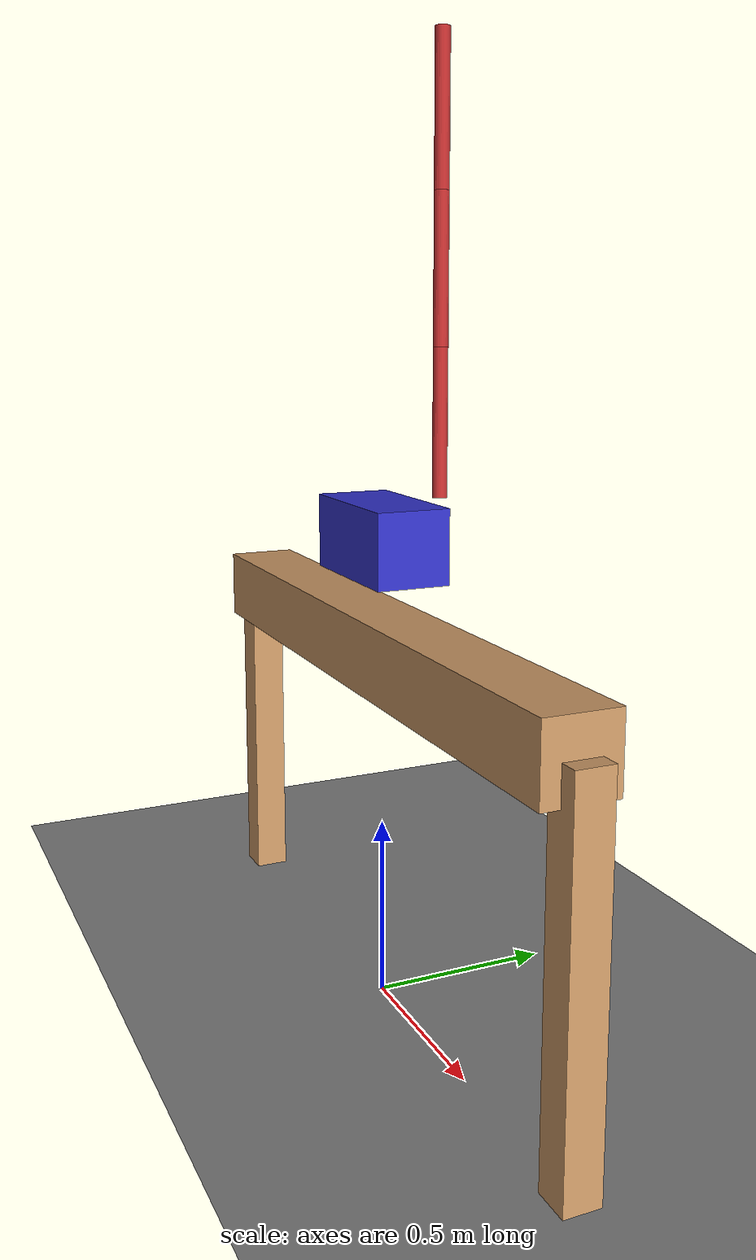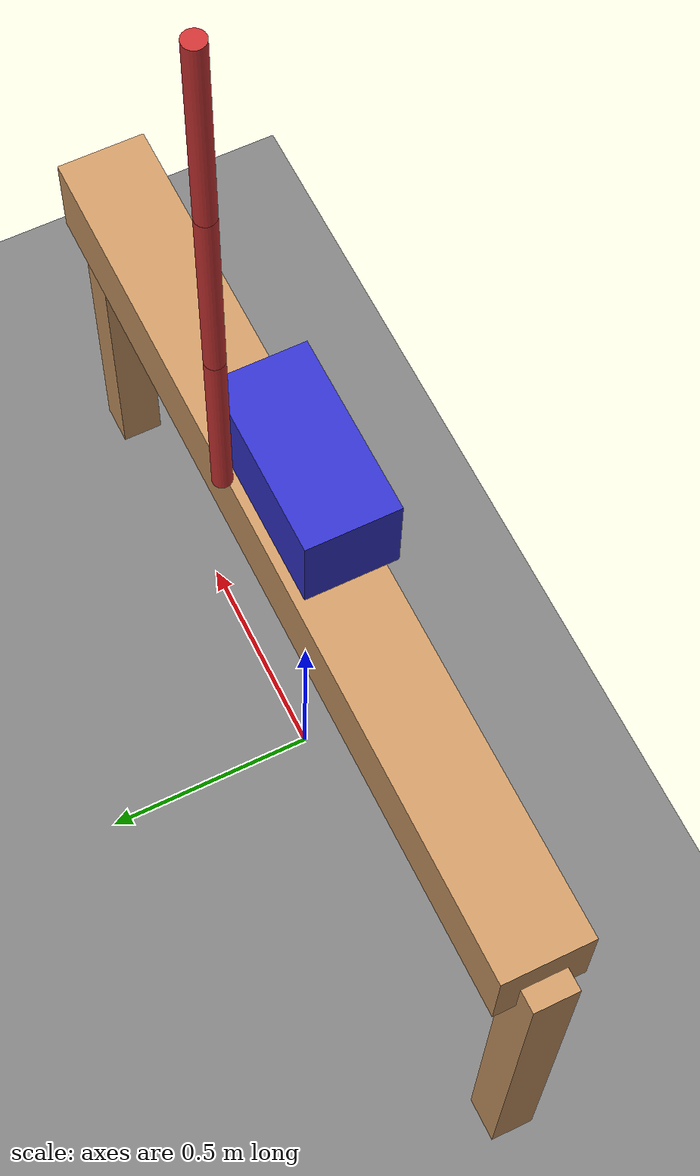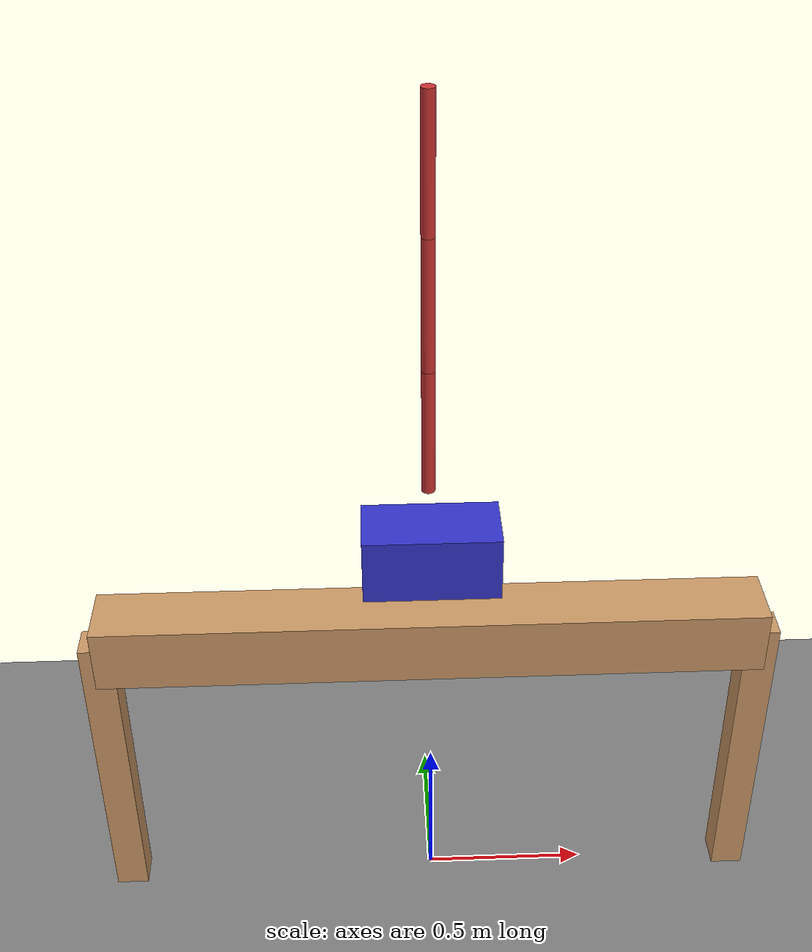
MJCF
<mujoco>
  <option timestep="0.0001" gravity="0 0 -9.81" integrator="RK4">
    <flag warmstart="enable"/>
  </option>
<asset>
    <texture name="grid" type="2d" builtin="checker" width="1024" height="1024" rgb1="0.9 0.9 0.9" rgb2="0.1 0.1 0.1"/>
    <material name="grid_mat" texture="grid" texrepeat="8 8" texuniform="true"/>
</asset>
<worldbody>
    <light diffuse="0.8 0.8 0.8" pos="0 0 3" dir="0 0 -1"/>
    <geom name="floor" type="plane" pos="0 0 0" size="5 5 0.1" material="grid_mat"/>
    <body name="table" pos="0 0 1">
        <geom type="box" size="1 0.1 0.1" rgba="0.8 0.6 0.4 1"/>
        <body name="table_foot_right" pos="1 0 -0.5">
            <geom type="box" size="0.05 0.05 0.5" rgba="0.8 0.6 0.4 1"/>
        </body>
        <body name="table_foot_left" pos="-1 0 -0.5">
            <geom type="box" size="0.05 0.05 0.5" rgba="0.8 0.6 0.4 1"/>
        </body>
    </body>
<body name="cart" pos="0 0 1.3">
  <geom type="box" size="0.2 0.1 0.1" rgba="0.2 0.2 0.8 1"/>
  <joint name="cart_slide" type="slide" axis="1 0 0" limited="true" range="-100 100"/>
  <!-- pole is child of cart => connected -->
  <body name="pole" pos="0 0.17 0.1">
    <joint name="pole_hinge" type="hinge" axis="0 1 0"   pos="0 0 0" damping="0.1"/>
    <geom type="cylinder" size="0.02 0.2" pos="0 0 0.2" rgba="0.8 0.2 0.2 1"/>
      <body name="pole_pole" pos="0 0 0.4" euler="0 0 0">
    <joint name="pole_pole_hinge" type="hinge" axis="0 1 0"   pos="0 0 0" damping="0.1"/>
    <geom type="cylinder" size="0.02 0.2" pos="0 0 0.2" rgba="0.8 0.2 0.2 1"/>
          <body name="pole_pole_pole" pos="0 0 0.4" euler="0 0 0">
            <joint name="pole_pole_pole_hinge" type="hinge" axis="0 1 0"   pos="0 0 0" damping="0.1"/>
            <geom type="cylinder" size="0.02 0.2" pos="0 0 0.2" rgba="0.8 0.2 0.2 1"/>
    </body>
    </body>
  </body>
</body>
</worldbody>
<contact>
    <exclude body1="pole" body2="pole_pole"/>
    <exclude body1="pole" body2="pole_pole_pole"/>
    <exclude body1="pole_pole" body2="pole_pole_pole"/>
    <exclude body1="cart" body2="pole_pole"/>
    <exclude body1="cart" body2="pole_pole_pole"/>
</contact>
<actuator>
    <motor name="cart_motor" joint="cart_slide" />
</actuator>
<sensor>
    <jointpos name="jointpos" joint="cart_slide"/>
    <jointvel name="jointvel" joint="cart_slide"/>
    <jointpos name="pole_hinge_pos" joint="pole_hinge"/>
    <jointvel name="pole_hinge_vel" joint="pole_hinge"/>
    <jointpos name="pole_pole_hinge_pos" joint="pole_pole_hinge"/>
    <jointvel name="pole_pole_hinge_vel" joint="pole_pole_hinge"/>
    <jointpos name="pole_pole_pole_hinge_pos" joint="pole_pole_pole_hinge"/>
    <jointvel name="pole_pole_pole_hinge_vel" joint="pole_pole_pole_hinge"/>
</sensor>
</mujoco>
